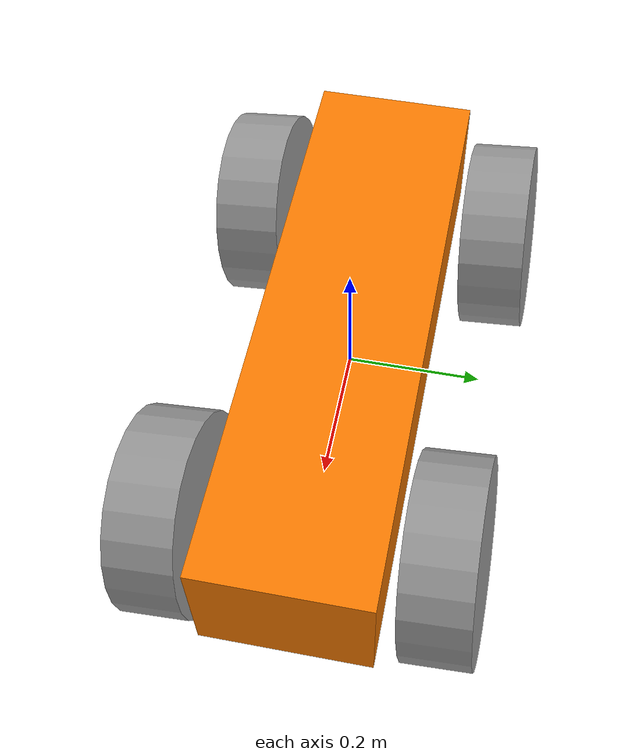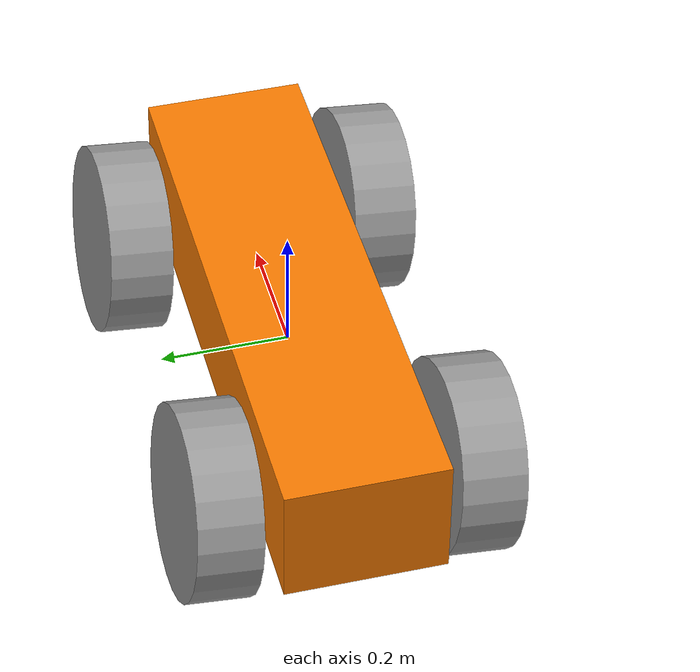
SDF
<?xml version='1.0'?>
<sdf version='1.6'>
  <model name='robot_in_my_house'>
    <link name='link_1'>
      <inertial>
        <mass>1</mass>
        <inertia>
          <ixx>0.166667</ixx>
          <ixy>0</ixy>
          <ixz>0</ixz>
          <iyy>0.166667</iyy>
          <iyz>0</iyz>
          <izz>0.166667</izz>
        </inertia>
        <pose frame=''>0 0 0 0 -0 0</pose>
      </inertial>
      <pose frame=''>0 -0.006 0.025346 0 -0 0</pose>
      <gravity>1</gravity>
      <self_collide>0</self_collide>
      <kinematic>0</kinematic>
      <enable_wind>0</enable_wind>
      <visual name='visual'>
        <pose frame=''>0 0 0 0 -0 0</pose>
        <geometry>
          <box>
            <size>0.9 0.25 0.2</size>
          </box>
        </geometry>
        <material>
          <lighting>1</lighting>
          <script>
            <uri>file://media/materials/scripts/gazebo.material</uri>
            <name>Gazebo/Grey</name>
          </script>
          <shader type='pixel'>
            <normal_map>__default__</normal_map>
          </shader>
          <ambient>0.961 0.475 0 1</ambient>
          <diffuse>0.961 0.475 0 1</diffuse>
          <specular>0.961 0.475 0 1</specular>
          <emissive>0 0 0 1</emissive>
        </material>
        <transparency>0</transparency>
        <cast_shadows>1</cast_shadows>
      </visual>
      <collision name='collision'>
        <laser_retro>0</laser_retro>
        <max_contacts>10</max_contacts>
        <pose frame=''>0 0 0 0 -0 0</pose>
        <geometry>
          <box>
            <size>0.9 0.25 0.2</size>
          </box>
        </geometry>
        <surface>
          <friction>
            <ode>
              <mu>1</mu>
              <mu2>1</mu2>
              <fdir1>0 0 0</fdir1>
              <slip1>0</slip1>
              <slip2>0</slip2>
            </ode>
            <torsional>
              <coefficient>1</coefficient>
              <patch_radius>0</patch_radius>
              <surface_radius>0</surface_radius>
              <use_patch_radius>1</use_patch_radius>
              <ode>
                <slip>0</slip>
              </ode>
            </torsional>
          </friction>
          <bounce>
            <restitution_coefficient>0</restitution_coefficient>
            <threshold>1e+06</threshold>
          </bounce>
          <contact>
            <collide_without_contact>0</collide_without_contact>
            <collide_without_contact_bitmask>1</collide_without_contact_bitmask>
            <collide_bitmask>1</collide_bitmask>
            <ode>
              <soft_cfm>0</soft_cfm>
              <soft_erp>0.2</soft_erp>
              <kp>1e+13</kp>
              <kd>1</kd>
              <max_vel>0.01</max_vel>
              <min_depth>0</min_depth>
            </ode>
            <bullet>
              <split_impulse>1</split_impulse>
              <split_impulse_penetration_threshold>-0.01</split_impulse_penetration_threshold>
              <soft_cfm>0</soft_cfm>
              <soft_erp>0.2</soft_erp>
              <kp>1e+13</kp>
              <kd>1</kd>
            </bullet>
          </contact>
        </surface>
      </collision>
    </link>
    <link name='link_3_clone_0_clone'>
      <inertial>
        <mass>1</mass>
        <inertia>
          <ixx>0.145833</ixx>
          <ixy>0</ixy>
          <ixz>0</ixz>
          <iyy>0.145833</iyy>
          <iyz>0</iyz>
          <izz>0.125</izz>
        </inertia>
        <pose frame=''>0 0 0 0 -0 0</pose>
      </inertial>
      <pose frame=''>-0.3 -0.19571 -0.006336 1.6707 -0 0</pose>
      <gravity>1</gravity>
      <self_collide>0</self_collide>
      <kinematic>0</kinematic>
      <enable_wind>0</enable_wind>
      <visual name='visual'>
        <pose frame=''>0 0 0 0 -0 0</pose>
        <geometry>
          <cylinder>
            <radius>0.15</radius>
            <length>0.1</length>
          </cylinder>
        </geometry>
        <material>
          <lighting>1</lighting>
          <script>
            <uri>file://media/materials/scripts/gazebo.material</uri>
            <name>Gazebo/Grey</name>
          </script>
          <shader type='pixel'>
            <normal_map>__default__</normal_map>
          </shader>
          <ambient>0 0 0 1</ambient>
          <diffuse>1 1 1 1</diffuse>
          <specular>0.933 0.933 0.925 1</specular>
          <emissive>0 0 0 1</emissive>
        </material>
        <transparency>0</transparency>
        <cast_shadows>1</cast_shadows>
      </visual>
      <collision name='collision'>
        <laser_retro>0</laser_retro>
        <max_contacts>10</max_contacts>
        <pose frame=''>0 0 0 0 -0 0</pose>
        <geometry>
          <cylinder>
            <radius>0.15</radius>
            <length>0.1</length>
          </cylinder>
        </geometry>
        <surface>
          <friction>
            <ode>
              <mu>1</mu>
              <mu2>1</mu2>
              <fdir1>0 0 0</fdir1>
              <slip1>0</slip1>
              <slip2>0</slip2>
            </ode>
            <torsional>
              <coefficient>1</coefficient>
              <patch_radius>0</patch_radius>
              <surface_radius>0</surface_radius>
              <use_patch_radius>1</use_patch_radius>
              <ode>
                <slip>0</slip>
              </ode>
            </torsional>
          </friction>
          <bounce>
            <restitution_coefficient>0</restitution_coefficient>
            <threshold>1e+06</threshold>
          </bounce>
          <contact>
            <collide_without_contact>0</collide_without_contact>
            <collide_without_contact_bitmask>1</collide_without_contact_bitmask>
            <collide_bitmask>1</collide_bitmask>
            <ode>
              <soft_cfm>0</soft_cfm>
              <soft_erp>0.2</soft_erp>
              <kp>1e+13</kp>
              <kd>1</kd>
              <max_vel>0.01</max_vel>
              <min_depth>0</min_depth>
            </ode>
            <bullet>
              <split_impulse>1</split_impulse>
              <split_impulse_penetration_threshold>-0.01</split_impulse_penetration_threshold>
              <soft_cfm>0</soft_cfm>
              <soft_erp>0.2</soft_erp>
              <kp>1e+13</kp>
              <kd>1</kd>
            </bullet>
          </contact>
        </surface>
      </collision>
    </link>
    <link name='link_3_clone_0_clone_clone'>
      <inertial>
        <mass>1</mass>
        <inertia>
          <ixx>0.145833</ixx>
          <ixy>0</ixy>
          <ixz>0</ixz>
          <iyy>0.145833</iyy>
          <iyz>0</iyz>
          <izz>0.125</izz>
        </inertia>
        <pose frame=''>0 0 0 0 -0 0</pose>
      </inertial>
      <pose frame=''>-0.3 0.19871 -0.006336 1.6707 -0 0</pose>
      <gravity>1</gravity>
      <self_collide>0</self_collide>
      <kinematic>0</kinematic>
      <enable_wind>0</enable_wind>
      <visual name='visual'>
        <pose frame=''>0 0 0 0 -0 0</pose>
        <geometry>
          <cylinder>
            <radius>0.15</radius>
            <length>0.1</length>
          </cylinder>
        </geometry>
        <material>
          <lighting>1</lighting>
          <script>
            <uri>file://media/materials/scripts/gazebo.material</uri>
            <name>Gazebo/Grey</name>
          </script>
          <shader type='pixel'>
            <normal_map>__default__</normal_map>
          </shader>
          <ambient>0 0 0 1</ambient>
          <diffuse>0.933 0.933 0.925 1</diffuse>
          <specular>0.933 0.933 0.925 1</specular>
          <emissive>0 0 0 1</emissive>
        </material>
        <transparency>0</transparency>
        <cast_shadows>1</cast_shadows>
      </visual>
      <collision name='collision'>
        <laser_retro>0</laser_retro>
        <max_contacts>10</max_contacts>
        <pose frame=''>0 0 0 0 -0 0</pose>
        <geometry>
          <cylinder>
            <radius>0.15</radius>
            <length>0.1</length>
          </cylinder>
        </geometry>
        <surface>
          <friction>
            <ode>
              <mu>1</mu>
              <mu2>1</mu2>
              <fdir1>0 0 0</fdir1>
              <slip1>0</slip1>
              <slip2>0</slip2>
            </ode>
            <torsional>
              <coefficient>1</coefficient>
              <patch_radius>0</patch_radius>
              <surface_radius>0</surface_radius>
              <use_patch_radius>1</use_patch_radius>
              <ode>
                <slip>0</slip>
              </ode>
            </torsional>
          </friction>
          <bounce>
            <restitution_coefficient>0</restitution_coefficient>
            <threshold>1e+06</threshold>
          </bounce>
          <contact>
            <collide_without_contact>0</collide_without_contact>
            <collide_without_contact_bitmask>1</collide_without_contact_bitmask>
            <collide_bitmask>1</collide_bitmask>
            <ode>
              <soft_cfm>0</soft_cfm>
              <soft_erp>0.2</soft_erp>
              <kp>1e+13</kp>
              <kd>1</kd>
              <max_vel>0.01</max_vel>
              <min_depth>0</min_depth>
            </ode>
            <bullet>
              <split_impulse>1</split_impulse>
              <split_impulse_penetration_threshold>-0.01</split_impulse_penetration_threshold>
              <soft_cfm>0</soft_cfm>
              <soft_erp>0.2</soft_erp>
              <kp>1e+13</kp>
              <kd>1</kd>
            </bullet>
          </contact>
        </surface>
      </collision>
    </link>
    <link name='link_3_clone_0_clone_clone_0'>
      <inertial>
        <mass>1</mass>
        <inertia>
          <ixx>0.145833</ixx>
          <ixy>0</ixy>
          <ixz>0</ixz>
          <iyy>0.145833</iyy>
          <iyz>0</iyz>
          <izz>0.125</izz>
        </inertia>
        <pose frame=''>0 0 0 0 -0 0</pose>
      </inertial>
      <pose frame=''>0.3 0.19871 -0.006336 1.6707 -0 0</pose>
      <gravity>1</gravity>
      <self_collide>0</self_collide>
      <kinematic>0</kinematic>
      <enable_wind>0</enable_wind>
      <visual name='visual'>
        <pose frame=''>0 0 0 0 -0 0</pose>
        <geometry>
          <cylinder>
            <radius>0.15</radius>
            <length>0.1</length>
          </cylinder>
        </geometry>
        <material>
          <lighting>1</lighting>
          <script>
            <uri>file://media/materials/scripts/gazebo.material</uri>
            <name>Gazebo/Grey</name>
          </script>
          <shader type='pixel'>
            <normal_map>__default__</normal_map>
          </shader>
          <ambient>0 0 0 1</ambient>
          <diffuse>0.933 0.933 0.925 1</diffuse>
          <specular>0.933 0.933 0.925 1</specular>
          <emissive>0 0 0 1</emissive>
        </material>
        <transparency>0</transparency>
        <cast_shadows>1</cast_shadows>
      </visual>
      <collision name='collision'>
        <laser_retro>0</laser_retro>
        <max_contacts>10</max_contacts>
        <pose frame=''>0 0 0 0 -0 0</pose>
        <geometry>
          <cylinder>
            <radius>0.15</radius>
            <length>0.1</length>
          </cylinder>
        </geometry>
        <surface>
          <friction>
            <ode>
              <mu>1</mu>
              <mu2>1</mu2>
              <fdir1>0 0 0</fdir1>
              <slip1>0</slip1>
              <slip2>0</slip2>
            </ode>
            <torsional>
              <coefficient>1</coefficient>
              <patch_radius>0</patch_radius>
              <surface_radius>0</surface_radius>
              <use_patch_radius>1</use_patch_radius>
              <ode>
                <slip>0</slip>
              </ode>
            </torsional>
          </friction>
          <bounce>
            <restitution_coefficient>0</restitution_coefficient>
            <threshold>1e+06</threshold>
          </bounce>
          <contact>
            <collide_without_contact>0</collide_without_contact>
            <collide_without_contact_bitmask>1</collide_without_contact_bitmask>
            <collide_bitmask>1</collide_bitmask>
            <ode>
              <soft_cfm>0</soft_cfm>
              <soft_erp>0.2</soft_erp>
              <kp>1e+13</kp>
              <kd>1</kd>
              <max_vel>0.01</max_vel>
              <min_depth>0</min_depth>
            </ode>
            <bullet>
              <split_impulse>1</split_impulse>
              <split_impulse_penetration_threshold>-0.01</split_impulse_penetration_threshold>
              <soft_cfm>0</soft_cfm>
              <soft_erp>0.2</soft_erp>
              <kp>1e+13</kp>
              <kd>1</kd>
            </bullet>
          </contact>
        </surface>
      </collision>
    </link>
    <link name='link_3_clone_0_clone_clone_1'>
      <inertial>
        <mass>1</mass>
        <inertia>
          <ixx>0.145833</ixx>
          <ixy>0</ixy>
          <ixz>0</ixz>
          <iyy>0.145833</iyy>
          <iyz>0</iyz>
          <izz>0.125</izz>
        </inertia>
        <pose frame=''>0 0 0 0 -0 0</pose>
      </inertial>
      <pose frame=''>0.3 -0.19571 -0.006336 1.6707 -0 0</pose>
      <gravity>1</gravity>
      <self_collide>0</self_collide>
      <kinematic>0</kinematic>
      <enable_wind>0</enable_wind>
      <visual name='visual'>
        <pose frame=''>0 0 0 0 -0 0</pose>
        <geometry>
          <cylinder>
            <radius>0.15</radius>
            <length>0.1</length>
          </cylinder>
        </geometry>
        <material>
          <lighting>1</lighting>
          <script>
            <uri>file://media/materials/scripts/gazebo.material</uri>
            <name>Gazebo/Grey</name>
          </script>
          <shader type='pixel'>
            <normal_map>__default__</normal_map>
          </shader>
          <ambient>0 0 0 1</ambient>
          <diffuse>0.933 0.933 0.925 1</diffuse>
          <specular>0.933 0.933 0.925 1</specular>
          <emissive>0 0 0 1</emissive>
        </material>
        <transparency>0</transparency>
        <cast_shadows>1</cast_shadows>
      </visual>
      <collision name='collision'>
        <laser_retro>0</laser_retro>
        <max_contacts>10</max_contacts>
        <pose frame=''>0 0 0 0 -0 0</pose>
        <geometry>
          <cylinder>
            <radius>0.15</radius>
            <length>0.1</length>
          </cylinder>
        </geometry>
        <surface>
          <friction>
            <ode>
              <mu>1</mu>
              <mu2>1</mu2>
              <fdir1>0 0 0</fdir1>
              <slip1>0</slip1>
              <slip2>0</slip2>
            </ode>
            <torsional>
              <coefficient>1</coefficient>
              <patch_radius>0</patch_radius>
              <surface_radius>0</surface_radius>
              <use_patch_radius>1</use_patch_radius>
              <ode>
                <slip>0</slip>
              </ode>
            </torsional>
          </friction>
          <bounce>
            <restitution_coefficient>0</restitution_coefficient>
            <threshold>1e+06</threshold>
          </bounce>
          <contact>
            <collide_without_contact>0</collide_without_contact>
            <collide_without_contact_bitmask>1</collide_without_contact_bitmask>
            <collide_bitmask>1</collide_bitmask>
            <ode>
              <soft_cfm>0</soft_cfm>
              <soft_erp>0.2</soft_erp>
              <kp>1e+13</kp>
              <kd>1</kd>
              <max_vel>0.01</max_vel>
              <min_depth>0</min_depth>
            </ode>
            <bullet>
              <split_impulse>1</split_impulse>
              <split_impulse_penetration_threshold>-0.01</split_impulse_penetration_threshold>
              <soft_cfm>0</soft_cfm>
              <soft_erp>0.2</soft_erp>
              <kp>1e+13</kp>
              <kd>1</kd>
            </bullet>
          </contact>
        </surface>
      </collision>
    </link>
    <joint name='link_1_JOINT_1' type='revolute'>
      <parent>link_1</parent>
      <child>link_3_clone_0_clone</child>
      <pose frame=''>0 0 0 0 -0 0</pose>
      <axis>
        <xyz>0 0 1</xyz>
        <use_parent_model_frame>0</use_parent_model_frame>
        <limit>
          <lower>-1.79769e+308</lower>
          <upper>1.79769e+308</upper>
          <effort>-1</effort>
          <velocity>-1</velocity>
        </limit>
        <dynamics>
          <spring_reference>0</spring_reference>
          <spring_stiffness>0</spring_stiffness>
          <damping>0</damping>
        </dynamics>
      </axis>
      <physics>
        <ode>
          <limit>
            <cfm>0</cfm>
            <erp>0.2</erp>
          </limit>
          <suspension>
            <cfm>0</cfm>
            <erp>0.2</erp>
          </suspension>
        </ode>
      </physics>
    </joint>
    <joint name='link_1_JOINT_2' type='revolute'>
      <parent>link_1</parent>
      <child>link_3_clone_0_clone_clone</child>
      <pose frame=''>0 0 0 0 -0 0</pose>
      <axis>
        <xyz>0 0 1</xyz>
        <use_parent_model_frame>0</use_parent_model_frame>
        <limit>
          <lower>-1.79769e+308</lower>
          <upper>1.79769e+308</upper>
          <effort>-1</effort>
          <velocity>-1</velocity>
        </limit>
        <dynamics>
          <spring_reference>0</spring_reference>
          <spring_stiffness>0</spring_stiffness>
          <damping>0</damping>
        </dynamics>
      </axis>
      <physics>
        <ode>
          <limit>
            <cfm>0</cfm>
            <erp>0.2</erp>
          </limit>
          <suspension>
            <cfm>0</cfm>
            <erp>0.2</erp>
          </suspension>
        </ode>
      </physics>
    </joint>
    <joint name='link_1_JOINT_3' type='revolute'>
      <parent>link_1</parent>
      <child>link_3_clone_0_clone_clone_0</child>
      <pose frame=''>0 0 0 0 -0 0</pose>
      <axis>
        <xyz>0 0 1</xyz>
        <use_parent_model_frame>0</use_parent_model_frame>
        <limit>
          <lower>-1.79769e+308</lower>
          <upper>1.79769e+308</upper>
          <effort>-1</effort>
          <velocity>-1</velocity>
        </limit>
        <dynamics>
          <spring_reference>0</spring_reference>
          <spring_stiffness>0</spring_stiffness>
          <damping>0</damping>
        </dynamics>
      </axis>
      <physics>
        <ode>
          <limit>
            <cfm>0</cfm>
            <erp>0.2</erp>
          </limit>
          <suspension>
            <cfm>0</cfm>
            <erp>0.2</erp>
          </suspension>
        </ode>
      </physics>
    </joint>
    <joint name='link_1_JOINT_4' type='revolute'>
      <parent>link_1</parent>
      <child>link_3_clone_0_clone_clone_1</child>
      <pose frame=''>0 0 0 0 -0 0</pose>
      <axis>
        <xyz>0 0 1</xyz>
        <use_parent_model_frame>0</use_parent_model_frame>
        <limit>
          <lower>-1.79769e+308</lower>
          <upper>1.79769e+308</upper>
          <effort>-1</effort>
          <velocity>-1</velocity>
        </limit>
        <dynamics>
          <spring_reference>0</spring_reference>
          <spring_stiffness>0</spring_stiffness>
          <damping>0</damping>
        </dynamics>
      </axis>
      <physics>
        <ode>
          <limit>
            <cfm>0</cfm>
            <erp>0.2</erp>
          </limit>
          <suspension>
            <cfm>0</cfm>
            <erp>0.2</erp>
          </suspension>
        </ode>
      </physics>
    </joint>
    <static>0</static>
    <allow_auto_disable>1</allow_auto_disable>
  </model>
</sdf>
